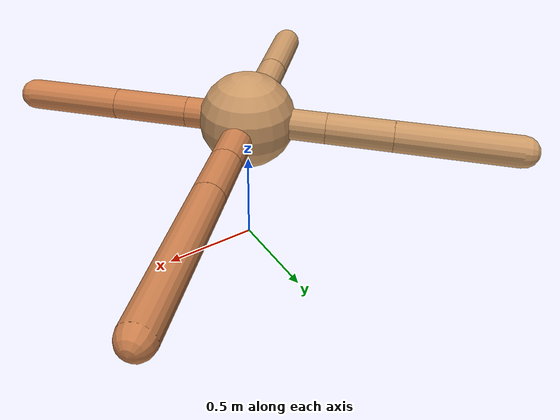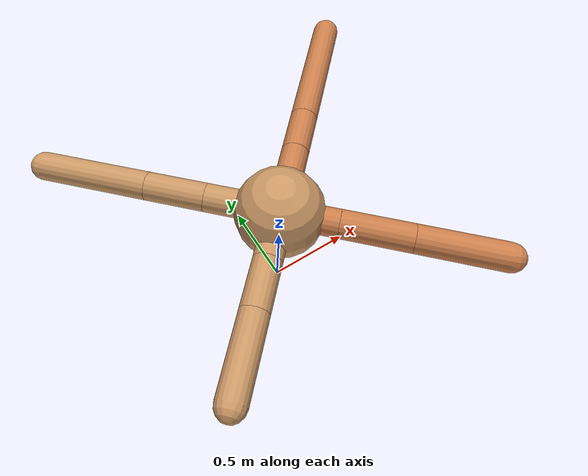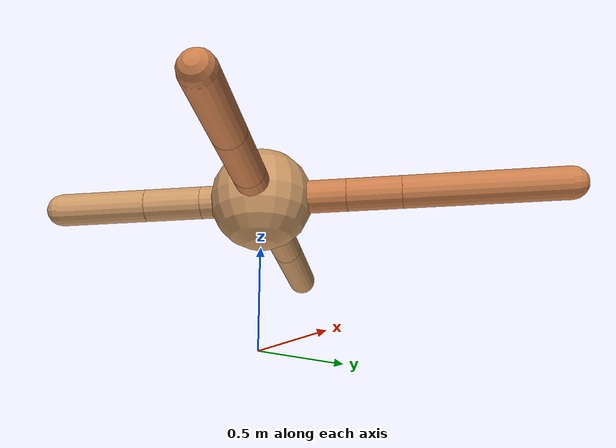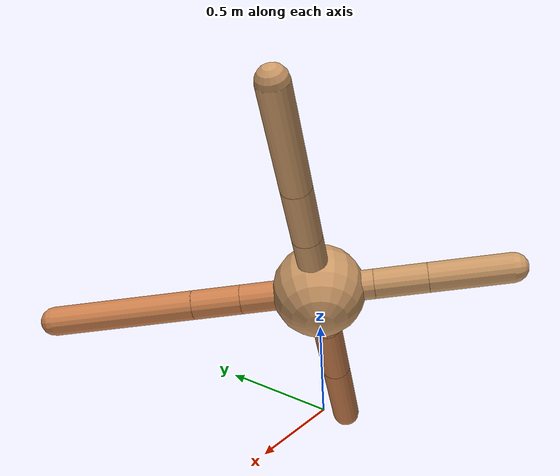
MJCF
<mujoco model="ant">
  <compiler angle="degree" coordinate="local" inertiafromgeom="true" />
  <option integrator="RK4" timestep="0.01" />
  <custom>
    <numeric data="0.0 0.0 0.55 1.0 0.0 0.0 0.0 0.0 1.0 0.0 -1.0 0.0 -1.0 0.0 1.0" name="init_qpos" />
  </custom>
  <default>
    <joint armature="1" damping="1" limited="true" />
    <geom conaffinity="0" condim="3" density="5.0" friction="1.5 0.1 0.1" margin="0.01" rgba="0.8 0.6 0.4 1" />
  </default>
  <worldbody>
    <body name="torso" pos="0 0 0.75">
      <geom name="torso_geom" pos="0 0 0" size="0.25" type="sphere" />

      <body name="front_left_leg" pos="0 0 0">
        <geom fromto="0.0 0.0 0.0 0.29597618300139733 0.29597618300139733 0.0" name="aux_1_geom" size="0.08" type="capsule" rgba=".8 .5 .3 1" />
        <body name="aux_1" pos="0.29597618300139733 0.29597618300139733 0.0">
          <joint axis="0 0 1" name="hip_1" pos="0.0 0.0 0.0" range="-40 40" type="hinge" />
          <geom fromto="0.0 0.0 0.0 0.18816307987879877 0.18816307987879877 0.0" name="left_leg_geom" size="0.08" type="capsule" rgba=".8 .5 .3 1" />
          <body pos="0.18816307987879877 0.18816307987879877 0.0" name="front_left_foot">
            <joint axis="-1 1 0" name="ankle_1" pos="0.0 0.0 0.0" range="30 100" type="hinge" />
            <geom fromto="0.0 0.0 0.0 0.5565888360927902 0.5565888360927902 0.0" name="left_ankle_geom" size="0.08" type="capsule" rgba=".8 .5 .3 1" />
          </body>
        </body>
      </body>
      <body name="front_right_leg" pos="0 0 0">
        <geom fromto="0.0 0.0 0.0 -0.29199299121866534 0.29199299121866534 0.0" name="aux_2_geom" size="0.08" type="capsule" />
        <body name="aux_2" pos="-0.29199299121866534 0.29199299121866534 0.0">
          <joint axis="0 0 1" name="hip_2" pos="0.0 0.0 0.0" range="-40 40" type="hinge" />
          <geom fromto="0.0 0.0 0.0 -0.23847213310207138 0.23847213310207138 0.0" name="right_leg_geom" size="0.08" type="capsule" />
          <body pos="-0.23847213310207138 0.23847213310207138 0.0" name="front_right_foot">
            <joint axis="1 1 0" name="ankle_2" pos="0.0 0.0 0.0" range="-100 -30" type="hinge" />
            <geom fromto="0.0 0.0 0.0 -0.42965617552912105 0.42965617552912105 0.0" name="right_ankle_geom" size="0.08" type="capsule" />
          </body>
        </body>
      </body>
      <body name="left_back_leg" pos="0 0 0">
        <geom fromto="0.0 0.0 0.0 -0.20848385879545425 -0.20848385879545425 0.0" name="aux_3_geom" size="0.08" type="capsule" />
        <body name="aux_3" pos="-0.20848385879545425 -0.20848385879545425 0.0">
          <joint axis="0 0 1" name="hip_3" pos="0.0 0.0 0.0" range="-40 40" type="hinge" />
          <geom fromto="0.0 0.0 0.0 -0.19945418230590886 -0.19945418230590886 0.0" name="back_leg_geom" size="0.08" type="capsule" />
          <body pos="-0.19945418230590886 -0.19945418230590886 0.0" name="left_back_foot">
            <joint axis="-1 1 0" name="ankle_3" pos="0.0 0.0 0.0" range="-100 -30" type="hinge" />
            <geom fromto="0.0 0.0 0.0 -0.3097708996264742 -0.3097708996264742 0.0" name="third_ankle_geom" size="0.08" type="capsule" />
          </body>
        </body>
      </body>
      <body name="right_back_leg" pos="0 0 0">
        <geom fromto="0.0 0.0 0.0 0.227414132629738 -0.227414132629738 0.0" name="aux_4_geom" size="0.08" type="capsule" rgba=".8 .5 .3 1" />
        <body name="aux_4" pos="0.227414132629738 -0.227414132629738 0.0">
          <joint axis="0 0 1" name="hip_4" pos="0.0 0.0 0.0" range="-40 40" type="hinge" />
          <geom fromto="0.0 0.0 0.0 0.2774654063667195 -0.2774654063667195 0.0" name="rightback_leg_geom" size="0.08" type="capsule" rgba=".8 .5 .3 1" />
          <body pos="0.2774654063667195 -0.2774654063667195 0.0" name="right_back_foot">
            <joint axis="1 1 0" name="ankle_4" pos="0.0 0.0 0.0" range="30 100" type="hinge" />
            <geom fromto="0.0 0.0 0.0 0.34627219481881305 -0.34627219481881305 0.0" name="fourth_ankle_geom" size="0.08" type="capsule" rgba=".8 .5 .3 1" />
          </body>
        </body>
      </body>
    </body>
  </worldbody>
  <actuator>
    <motor ctrllimited="true" ctrlrange="-1.0 1.0" joint="hip_4" gear="150" />
    <motor ctrllimited="true" ctrlrange="-1.0 1.0" joint="ankle_4" gear="150" />
    <motor ctrllimited="true" ctrlrange="-1.0 1.0" joint="hip_1" gear="150" />
    <motor ctrllimited="true" ctrlrange="-1.0 1.0" joint="ankle_1" gear="150" />
    <motor ctrllimited="true" ctrlrange="-1.0 1.0" joint="hip_2" gear="150" />
    <motor ctrllimited="true" ctrlrange="-1.0 1.0" joint="ankle_2" gear="150" />
    <motor ctrllimited="true" ctrlrange="-1.0 1.0" joint="hip_3" gear="150" />
    <motor ctrllimited="true" ctrlrange="-1.0 1.0" joint="ankle_3" gear="150" />
  </actuator>
</mujoco>
